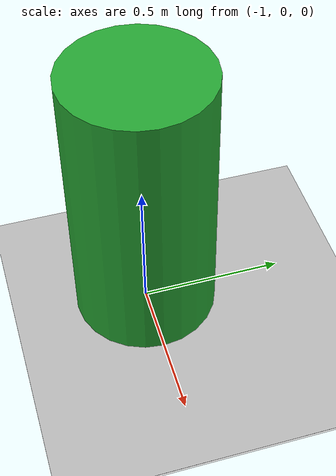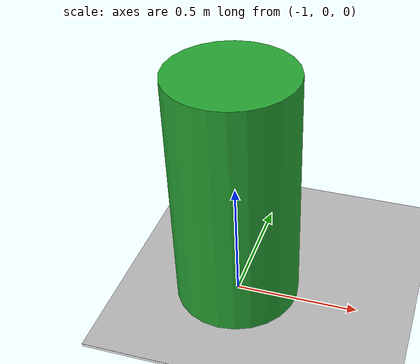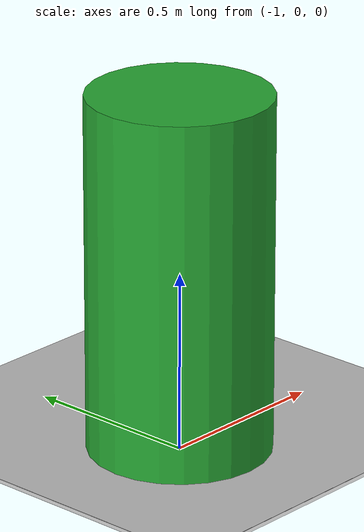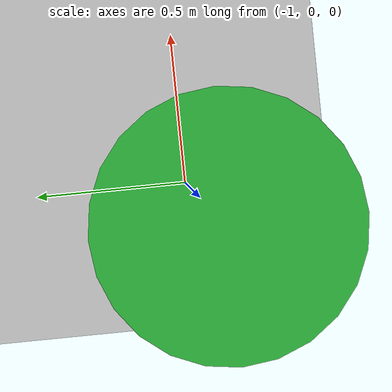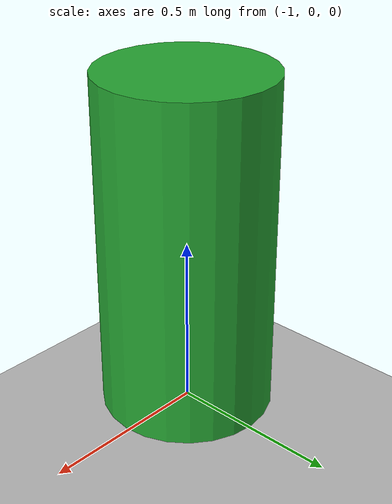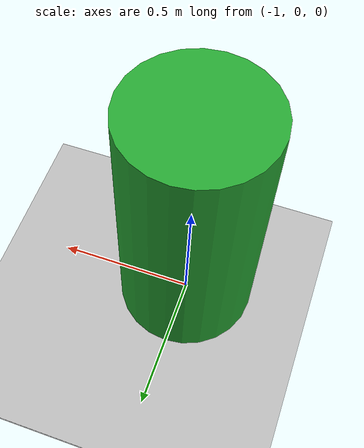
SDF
<?xml version="1.0"?>
<sdf version="1.5">
    <world name='default'>
    	<gui fullscreen="0"></gui>

     	<include>
      		<uri>model://sun</uri>
    	</include>

	    <include>
      		<uri>model://green_cylinder</uri>
			<pose>-1 0 0.5 0 0 0</pose>
    	</include>

		<include>
      		<uri>model://Floor_room</uri>
    	</include>

		<include>
    	     <uri>model://ground_plane</uri>
    	</include>

		<scene>
            <shadows>0</shadows>
            <ambient>0.4 0.4 0.4 1.0</ambient>
            <background>0.7 0.7 0.7 1</background>
		    <sky>
		        <clouds>
		            <speed>12</speed>
		        </clouds>
		 	</sky>
		</scene>
    </world>
</sdf>

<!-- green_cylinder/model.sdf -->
<sdf version='1.6'>
<model name='green_cylinder'>
    <pose>0 0 0 0 -0 0</pose>
    <link name='link'>
        <inertial>
            <mass>1</mass>
            <inertia>
                <ixx>0.145833</ixx>
                <ixy>0</ixy>
                <ixz>0</ixz>
                <iyy>0.145833</iyy>
                <iyz>0</iyz>
                <izz>0.125</izz>
            </inertia>
            <pose>0 0 0 0 -0 0</pose>
        </inertial>
        <collision name='collision'>
            <geometry>
                <cylinder>
                    <radius>0.25</radius>
                    <length>1</length>
                </cylinder>
            </geometry>
            <max_contacts>10</max_contacts>
            <surface>
                <contact>
                    <ode/>
                </contact>
                <bounce/>
                <friction>
                    <torsional>
                        <ode/>
                    </torsional>
                    <ode/>
                </friction>
            </surface>
        </collision>
        <visual name='visual'>
            <geometry>
                <cylinder>
                    <radius>0.25</radius>
                    <length>1</length>
                </cylinder>
            </geometry>
            <material>
                <script>
                    <name>Gazebo/Green</name>
                    <uri>file://media/materials/scripts/gazebo.material</uri>
                </script>
            </material>
        </visual>
        <self_collide>0</self_collide>
        <enable_wind>0</enable_wind>
        <kinematic>0</kinematic>
    </link>
</model>
</sdf>

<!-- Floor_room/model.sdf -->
<sdf version='1.6'>
  <model name='Floor_room'>
    <link name='main'>
	<pose frame=''>0 0 0.01 0 0 0</pose>
      <collision name='main_Collision'>
        <geometry>
          <box>
            <size>20 20 0.001 </size>
          </box>
        </geometry>
       </collision>
      <visual name='main_Visual'>
        <geometry>
          <box>
          <size>20 20 0.001</size>
          </box>
        </geometry>
           <material>
          <script>
            <uri>model://Floor_room/materials/scripts</uri>
            <uri>model://Floor_room/materials/textures</uri>
            <name>floor_room</name>
          </script>
        </material>
      </visual>
     </link>
    <static>1</static>
  </model>
</sdf>
